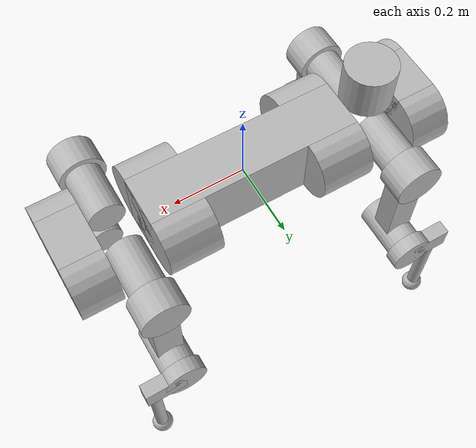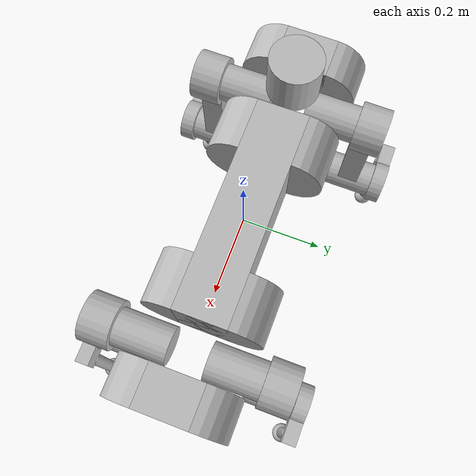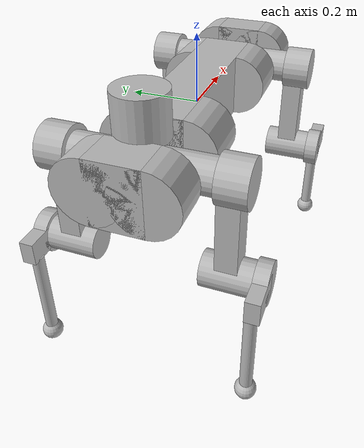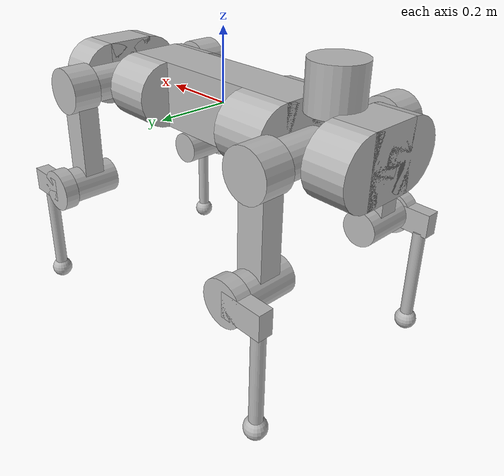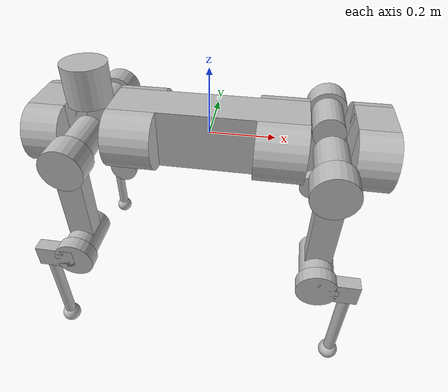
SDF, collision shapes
<sdf version="1.11">
 <model name="anymal">
  <link name="base">
   <inertial>
    <pose>-0.017793943143734711 -0.00017816961328741469 0.0085043390156462131 0 0 0</pose>
    <mass>26.373170000000009</mass>
    <inertia>
     <ixx>0.21671174330797921</ixx>
     <ixy>0.0092238113073508411</ixy>
     <ixz>0.058933188704784728</ixz>
     <iyy>1.785161688617307</iyy>
     <iyz>-0.0001637780172926634</iyz>
     <izz>1.8336994495846779</izz>
    </inertia>
   </inertial>
   <collision name="base_collision">
    <geometry><box><size>0.57999999999999996 0.14000000000000001 0.17999999999999999</size></box></geometry>
   </collision>
   <collision name="base_collision_1">
    <pose>0.2175 0.070000000000000007 0 0 1.5707963267948966 0</pose>
    <geometry>
     <cylinder><length>0.14499999999999999</length><radius>0.089999999999999997</radius></cylinder>
    </geometry>
   </collision>
   <collision name="base_collision_2">
    <pose>-0.2175 0.070000000000000007 0 0 1.5707963267948966 0</pose>
    <geometry>
     <cylinder><length>0.14499999999999999</length><radius>0.089999999999999997</radius></cylinder>
    </geometry>
   </collision>
   <collision name="base_collision_3">
    <pose>0.2175 -0.070000000000000007 0 0 1.5707963267948966 0</pose>
    <geometry>
     <cylinder><length>0.14499999999999999</length><radius>0.089999999999999997</radius></cylinder>
    </geometry>
   </collision>
   <collision name="base_collision_4">
    <pose>-0.2175 -0.070000000000000007 0 0 1.5707963267948966 0</pose>
    <geometry>
     <cylinder><length>0.14499999999999999</length><radius>0.089999999999999997</radius></cylinder>
    </geometry>
   </collision>
   <collision name="base_fixed_joint_lump__face_front_collision_5">
    <pose>0.46949999999999997 0 0 0 0 0</pose>
    <geometry><box><size>0.11 0.14000000000000001 0.17999999999999999</size></box></geometry>
   </collision>
   <collision name="base_fixed_joint_lump__face_front_collision_6">
    <pose>0.46949999999999997 0.070000000000000007 0 0 1.5707963267948966 0</pose>
    <geometry><cylinder><length>0.11</length><radius>0.089999999999999997</radius></cylinder></geometry>
   </collision>
   <collision name="base_fixed_joint_lump__face_front_collision_7">
    <pose>0.46949999999999997 -0.070000000000000007 0 0 1.5707963267948966 0</pose>
    <geometry><cylinder><length>0.11</length><radius>0.089999999999999997</radius></cylinder></geometry>
   </collision>
   <collision name="base_fixed_joint_lump__face_rear_collision_8">
    <pose>-0.46949999999999997 -1.137527089106179e-14 0 0 0 -3.1415926535895871</pose>
    <geometry><box><size>0.11 0.14000000000000001 0.17999999999999999</size></box></geometry>
   </collision>
   <collision name="base_fixed_joint_lump__face_rear_collision_9">
    <pose>-0.46949999999998548 -0.070000000000011386 0 3.1415926535895866
					1.5707963267948966 0</pose>
    <geometry><cylinder><length>0.11</length><radius>0.089999999999999997</radius></cylinder></geometry>
   </collision>
   <collision name="base_fixed_joint_lump__face_rear_collision_10">
    <pose>-0.46950000000001452 0.069999999999988627 0 3.1415926535895866
					1.5707963267948966 0</pose>
    <geometry><cylinder><length>0.11</length><radius>0.089999999999999997</radius></cylinder></geometry>
   </collision>
   <collision name="base_fixed_joint_lump__lidar_cage_collision_11">
    <pose>-0.36399999999999999 0 0.13350000000000001 0 0 0</pose>
    <geometry><cylinder><length>0.12</length><radius>0.070000000000000007</radius></cylinder></geometry>
   </collision>
   <collision name="base_fixed_joint_lump__imu_link_collision_12">
    <pose>0.24879999999999999 0.0083499999999999998 0.051279999999999999 0 0
					1.57079632679</pose>
    <geometry><box><size>0.024 0.024 0.01</size></box></geometry>
   </collision>
   <visual name="base_visual">
    <geometry><mesh><scale>1 1 1</scale><uri>meshes/base.dae</uri></mesh></geometry>
   </visual>
   <visual name="base_fixed_joint_lump__LF_HAA_link_visual_1">
    <pose>0.2999 0.104 0 2.6179938779900001 0 0</pose>
    <geometry><mesh><scale>1 1 1</scale><uri>meshes/drive.dae</uri></mesh></geometry>
   </visual>
   <visual name="base_fixed_joint_lump__LH_HAA_link_visual_2">
    <pose>-0.2999 0.104 0 -2.6179938779900001 -6.3108872417680944e-30 3.1415926535895871</pose>
    <geometry><mesh><scale>1 1 1</scale><uri>meshes/drive.dae</uri></mesh></geometry>
   </visual>
   <visual name="base_fixed_joint_lump__RF_HAA_link_visual_3">
    <pose>0.2999 -0.104 0 -2.6179938779900001 0 0</pose>
    <geometry><mesh><scale>1 1 1</scale><uri>meshes/drive.dae</uri></mesh></geometry>
   </visual>
   <visual name="base_fixed_joint_lump__RH_HAA_link_visual_4">
    <pose>-0.2999 -0.104 0 2.6179938779900001 6.3108872417680944e-30 3.1415926535895871</pose>
    <geometry><mesh><scale>1 1 1</scale><uri>meshes/drive.dae</uri></mesh></geometry>
   </visual>
   <visual name="base_fixed_joint_lump__battery_visual_5">
    <geometry><mesh><scale>1 1 1</scale><uri>meshes/battery.dae</uri></mesh></geometry>
   </visual>
   <visual name="base_fixed_joint_lump__bottom_shell_visual_6">
    <geometry><mesh><scale>1 1 1</scale><uri>meshes/bottom_shell.dae</uri></mesh></geometry>
   </visual>
   <visual name="base_fixed_joint_lump__face_front_visual_7">
    <pose>0.41449999999999998 0 0 0 0 0</pose>
    <geometry><mesh><scale>1 1 1</scale><uri>meshes/face.dae</uri></mesh></geometry>
   </visual>
   <visual name="base_fixed_joint_lump__depth_camera_front_camera_visual_8">
    <pose>0.46165 0 -0.0292 0 0.52359877559800005 0</pose>
    <geometry><mesh><scale>1 1 1</scale><uri>meshes/depth_camera.dae</uri></mesh></geometry>
   </visual>
   <visual name="base_fixed_joint_lump__wide_angle_camera_front_camera_visual_9">
    <pose>0.51300000000000001 0 0.014970000000000001 0 0 0</pose>
    <geometry><mesh><scale>1 1 1</scale><uri>meshes/wide_angle_camera.dae</uri></mesh></geometry>
   </visual>
   <visual name="base_fixed_joint_lump__face_rear_visual_10">
    <pose>-0.41449999999999998 0 0 0 0 -3.1415926535895871</pose>
    <geometry><mesh><scale>1 1 1</scale><uri>meshes/face.dae</uri></mesh></geometry>
   </visual>
   <visual name="base_fixed_joint_lump__depth_camera_rear_camera_visual_11">
    <pose>-0.46165 -9.7517095002466099e-15 -0.0292 -7.287184895719111e-30
					0.52359877559800005
					-3.1415926535895871</pose>
    <geometry><mesh><scale>1 1 1</scale><uri>meshes/depth_camera.dae</uri></mesh></geometry>
   </visual>
   <visual name="base_fixed_joint_lump__wide_angle_camera_rear_camera_visual_12">
    <pose>-0.51300000000000001 -2.037207605035612e-14 0.014970000000000001 0 0
					-3.1415926535895871</pose>
    <geometry><mesh><scale>1 1 1</scale><uri>meshes/wide_angle_camera.dae</uri></mesh></geometry>
   </visual>
   <visual name="base_fixed_joint_lump__handle_visual_13">
    <geometry><mesh><scale>1 1 1</scale><uri>meshes/handle.dae</uri></mesh></geometry>
   </visual>
   <visual name="base_fixed_joint_lump__hatch_visual_14">
    <pose>0.11600000000000001 0 0.072999999999999995 0 0 0</pose>
    <geometry><mesh><scale>1 1 1</scale><uri>meshes/hatch.dae</uri></mesh></geometry>
   </visual>
   <visual name="base_fixed_joint_lump__remote_visual_15">
    <geometry><mesh><scale>1 1 1</scale><uri>meshes/remote.dae</uri></mesh></geometry>
   </visual>
   <visual name="base_fixed_joint_lump__depth_camera_left_camera_visual_16">
    <pose>0 0.07646 0.029049999999999999 -3.2049378106387202e-17 0.52359877559800005
					1.5707963267899998</pose>
    <geometry><mesh><scale>1 1 1</scale><uri>meshes/depth_camera.dae</uri></mesh></geometry>
   </visual>
   <visual name="base_fixed_joint_lump__depth_camera_right_camera_visual_17">
    <pose>0 -0.07646 0.029049999999999999 3.2049378106387202e-17 0.52359877559800005
					-1.5707963267899998</pose>
    <geometry><mesh><scale>1 1 1</scale><uri>meshes/depth_camera.dae</uri></mesh></geometry>
   </visual>
   <visual name="base_fixed_joint_lump__lidar_cage_visual_18">
    <pose>-0.36399999999999999 0 0.073499999999999996 0 0 0</pose>
    <geometry><mesh><scale>1 1 1</scale><uri>meshes/lidar_cage.dae</uri></mesh></geometry>
   </visual>
   <visual name="base_fixed_joint_lump__lidar_visual_19">
    <pose>-0.36399999999999999 0 0.14219999999999999 0 0 -1.57079632679</pose>
    <geometry><mesh><scale>1 1 1</scale><uri>meshes/lidar.dae</uri></mesh></geometry>
   </visual>
   <visual name="base_fixed_joint_lump__top_shell_visual_20">
    <geometry><mesh><scale>1 1 1</scale><uri>meshes/top_shell.dae</uri></mesh></geometry>
   </visual>
   <visual name="base_fixed_joint_lump__imu_link_visual_21">
    <pose>0.24879999999999999 0.0083499999999999998 0.051279999999999999 0 0
					1.57079632679</pose>
    <geometry><box><size>0.024 0.024 0.01</size></box></geometry>
   </visual>
   <sensor name="imu_sensor" type="imu">
    <always_on>1</always_on>
    <update_rate>1</update_rate>
    <visualize>true</visualize>
    <topic>/anymal/imu</topic>
   </sensor>
  </link>
  <joint name="LF_HAA" type="revolute">
   <pose relative_to="base">0.2999 0.104 0 2.6179938779900001 0 0</pose>
   <parent>base</parent>
   <child>LF_HIP</child>
   <axis>
    <xyz>1 0 0</xyz>
    <limit>
     <lower>-0.71999999999999997</lower>
     <upper>0.48999999999999999</upper>
     <effort>80</effort>
     <velocity>7.5</velocity>
    </limit>
    <dynamics>
     <damping>0.01</damping>
     <friction>0.01</friction>
     <spring_reference>0</spring_reference>
     <spring_stiffness>0</spring_stiffness>
    </dynamics>
   </axis>
  </joint>
  <link name="LF_HIP">
   <pose relative_to="LF_HAA">0 0 0 0 0 0</pose>
   <inertial>
    <pose>0.056660625673991612 -0.015293968803304031 -0.0082978431652548611 0 0 0</pose>
    <mass>2.7810000000000001</mass>
    <inertia>
     <ixx>0.003295526429711179</ixx>
     <ixy>-1.0388233058723431e-05</ixy>
     <ixz>0.0001070622327342813</ixz>
     <iyy>0.0050443492876884287</iyy>
     <iyz>-0.00031949181072328699</iyz>
     <izz>0.0057269038510383181</izz>
    </inertia>
   </inertial>
   <collision name="LF_HIP_fixed_joint_lump__LF_HFE_link_collision">
    <pose>0.059899999999657227 -0.011959810826252771 -0.0069050000000178656
					-3.141592653584897
					-1.0471975511902076 -1.570796326794897</pose>
    <geometry>
     <cylinder><length>0.14000000000000001</length><radius>0.050000000000000003</radius></cylinder>
    </geometry>
   </collision>
   <visual name="LF_HIP_fixed_joint_lump__LF_hip_fixed_visual">
    <pose>0 0 0 -2.6179938779900001 0 0</pose>
    <geometry><mesh><scale>1 1 1</scale><uri>meshes/hip_l.dae</uri></mesh></geometry>
   </visual>
   <visual name="LF_HIP_fixed_joint_lump__LF_HFE_link_visual_1">
    <pose>0.059900000000000002 -0.072581589091111176 -0.041905000000108453
					-3.141592653586966
					0.52359877559979318 -1.570796326789242</pose>
    <geometry><mesh><scale>1 1 1</scale><uri>meshes/drive.dae</uri></mesh></geometry>
   </visual>
  </link>
  <joint name="LF_HFE" type="revolute">
   <pose relative_to="LF_HIP">0.059900000000000002 -0.072581589091111176
				-0.041905000000108453
				-3.141592653586966 0.52359877559979318 -1.570796326789242</pose>
   <parent>LF_HIP</parent>
   <child>LF_THIGH</child>
   <axis>
    <xyz>1 0 0</xyz>
    <limit>
     <lower>-9.4247779607699993</lower>
     <upper>9.4247779607699993</upper>
     <effort>80</effort>
     <velocity>7.5</velocity>
    </limit>
    <dynamics>
     <damping>0.01</damping>
     <friction>0.01</friction>
     <spring_reference>0</spring_reference>
     <spring_stiffness>0</spring_stiffness>
    </dynamics>
   </axis>
  </joint>
  <link name="LF_THIGH">
   <pose relative_to="LF_HFE">0 0 0 0 0 0</pose>
   <inertial>
    <pose>0.03081471833279063 4.6499511915559621e-05 -0.24569573428850541 0 0 0</pose>
    <mass>3.0710000000000002</mass>
    <inertia>
     <ixx>0.029563793513988971</ixx>
     <ixy>4.4291901775859802e-05</ixy>
     <ixz>0.0041424259528102039</ixz>
     <iyy>0.029904049332850569</iyy>
     <iyz>9.4479961187896678e-05</iyz>
     <izz>0.004861084530601148</izz>
    </inertia>
   </inertial>
   <collision name="LF_THIGH_fixed_joint_lump__LF_thigh_fixed_collision">
    <pose>0.040000000000000001 1.9587109711949319e-13 0 1.57079632679
					5.5511151231257827e-17
					-1.57079632679</pose>
    <geometry>
     <cylinder><length>0.080000000000000002</length><radius>0.065000000000000002</radius></cylinder>
    </geometry>
   </collision>
   <collision name="LF_THIGH_fixed_joint_lump__LF_thigh_fixed_collision_1">
    <pose>0.029999999999999999 1.46899853392668e-13 -0.14131350000000001 0 0
					-1.57079632679</pose>
    <geometry><box><size>0.074999999999999997 0.059999999999999998 0.28262700000000002</size></box></geometry>
   </collision>
   <collision name="LF_THIGH_fixed_joint_lump__LF_KFE_link_collision_2">
    <pose>0.03029999999999999 4.9113837996550558e-13 -0.28499999999999998 0
					1.5707963267948966 0</pose>
    <geometry>
     <cylinder><length>0.14000000000000001</length><radius>0.050000000000000003</radius></cylinder>
    </geometry>
   </collision>
   <visual name="LF_THIGH_fixed_joint_lump__LF_thigh_fixed_visual">
    <pose>0 0 0 0 0 -1.57079632679</pose>
    <geometry><mesh><scale>1 1 1</scale><uri>meshes/thigh.dae</uri></mesh></geometry>
   </visual>
   <visual name="LF_THIGH_fixed_joint_lump__LF_KFE_link_visual_1">
    <pose>0.1003 4.9113491051855362e-13 -0.28499999999999998 0 0 0</pose>
    <geometry><mesh><scale>1 1 1</scale><uri>meshes/drive.dae</uri></mesh></geometry>
   </visual>
  </link>
  <joint name="LF_KFE" type="revolute">
   <pose relative_to="LF_THIGH">0.1003 4.9113491051855362e-13 -0.28499999999999998 0 0 0</pose>
   <parent>LF_THIGH</parent>
   <child>LF_SHANK</child>
   <axis>
    <xyz>1 0 0</xyz>
    <limit>
     <lower>-9.4247779607699993</lower>
     <upper>9.4247779607699993</upper>
     <effort>80</effort>
     <velocity>7.5</velocity>
    </limit>
    <dynamics>
     <damping>0.01</damping>
     <friction>0.01</friction>
     <spring_reference>0</spring_reference>
     <spring_stiffness>0</spring_stiffness>
    </dynamics>
   </axis>
  </joint>
  <link name="LF_SHANK">
   <pose relative_to="LF_KFE">0 0 0 0 0 0</pose>
   <inertial>
    <pose>0.0054619992525347279 -0.061252769450365827 -0.080659781108731843 0 0 0</pose>
    <mass>0.58842000000000005</mass>
    <inertia>
     <ixx>0.010161141436439239</ixx>
     <ixy>-5.3571329219367323e-05</ixy>
     <ixz>-2.2660426829587631e-05</ixz>
     <iyy>0.0088103798213393578</iyy>
     <iyz>-0.001819353694812817</iyz>
     <izz>0.0015497840809709841</izz>
    </inertia>
   </inertial>
   <collision name="LF_SHANK_fixed_joint_lump__LF_shank_fixed_collision">
    <pose>0.02 9.7935548559746621e-14 0 1.57079632679 5.5511151231257827e-17
					-1.57079632679</pose>
    <geometry>
     <cylinder><length>0.040000000000000001</length><radius>0.059999999999999998</radius></cylinder>
    </geometry>
   </collision>
   <collision name="LF_SHANK_fixed_joint_lump__LF_shank_fixed_collision_1">
    <pose>0.02000000000028155 -0.057498999999902073 0 1.57079632679
					5.5511151231257827e-17
					-1.57079632679</pose>
    <geometry><box><size>0.114998 0.067500000000000004 0.040000000000000001</size></box></geometry>
   </collision>
   <collision name="LF_SHANK_fixed_joint_lump__LF_FOOT_collision_2">
    <pose>0.01305000000043066 -0.087949999999936093 -0.168985 0 0 -1.57079632679</pose>
    <geometry>
     <cylinder><length>0.28250399999999998</length><radius>0.017500000000000002</radius></cylinder>
    </geometry>
   </collision>
   <collision name="LF_SHANK_fixed_joint_lump__LF_FOOT_collision_3">
    <pose>0.01305000000043066 -0.087949999999936093 -0.31546999999999997 0 0
					-1.57079632679</pose>
    <geometry><sphere><radius>0.029999999999999999</radius></sphere></geometry>
   </collision>
   <visual name="LF_SHANK_fixed_joint_lump__LF_shank_fixed_visual">
    <pose>0 0 0 0 0 -1.57079632679</pose>
    <geometry><mesh><scale>1 1 1</scale><uri>meshes/shank_l.dae</uri></mesh></geometry>
   </visual>
   <visual name="LF_SHANK_fixed_joint_lump__LF_FOOT_visual_1">
    <pose>0.01305000000043066 -0.087949999999936093 -0.33796999999999999 0 0
					-2.3561944901869998</pose>
    <geometry><mesh><scale>1 1 1</scale><uri>meshes/foot.dae</uri></mesh></geometry>
   </visual>
   <sensor name="lf_foot_contact" type="contact">
    <always_on>1</always_on>
    <update_rate>200</update_rate>
    <topic>/anymal/LF/contact</topic>
    <contact><collision>LF_SHANK_fixed_joint_lump__LF_FOOT_collision_3</collision></contact>
   </sensor>
  </link>
  <joint name="LH_HAA" type="revolute">
   <pose relative_to="base">-0.2999 0.104 0 -2.6179938779900001 -6.3108872417680944e-30
				3.1415926535895871</pose>
   <parent>base</parent>
   <child>LH_HIP</child>
   <axis>
    <xyz>-1 0 0</xyz>
    <limit>
     <lower>-0.71999999999999997</lower>
     <upper>0.48999999999999999</upper>
     <effort>80</effort>
     <velocity>7.5</velocity>
    </limit>
    <dynamics>
     <damping>0.01</damping>
     <friction>0.01</friction>
     <spring_reference>0</spring_reference>
     <spring_stiffness>0</spring_stiffness>
    </dynamics>
   </axis>
  </joint>
  <link name="LH_HIP">
   <pose relative_to="LH_HAA">0 0 0 0 0 0</pose>
   <inertial>
    <pose>0.056763322546076272 0.015293968803292301 -0.0082978431652548611 0 0 0</pose>
    <mass>2.7810000000000001</mass>
    <inertia>
     <ixx>0.0032955264297111742</ixx>
     <ixy>-1.1005261347922599e-05</ixy>
     <ixz>-0.00010912110284194391</ixz>
     <iyy>0.0050461702880848017</iyy>
     <iyz>0.00031949181072330873</iyz>
     <izz>0.0057287248514346816</izz>
    </inertia>
   </inertial>
   <collision name="LH_HIP_fixed_joint_lump__LH_HFE_link_collision">
    <pose>0.059900000000345253 0.011959810826240379 -0.0069050000000178656
					-3.1415926535848975
					-1.0471975511902067 1.5707963267946903</pose>
    <geometry>
     <cylinder><length>0.14000000000000001</length><radius>0.050000000000000003</radius></cylinder>
    </geometry>
   </collision>
   <visual name="LH_HIP_fixed_joint_lump__LH_hip_fixed_visual">
    <pose>0 0 0 2.6179938779900001 1.0341155355537489e-13 -2.7709042263293297e-14</pose>
    <geometry><mesh><scale>1 1 1</scale><uri>meshes/hip_r.dae</uri></mesh></geometry>
   </visual>
   <visual name="LH_HIP_fixed_joint_lump__LH_HFE_link_visual_1">
    <pose>0.059900000000014997 0.072581589091098797 -0.041905000000108453
					-3.141592653586966
					0.52359877559979318 1.5707963268003442</pose>
    <geometry><mesh><scale>1 1 1</scale><uri>meshes/drive.dae</uri></mesh></geometry>
   </visual>
  </link>
  <joint name="LH_HFE" type="revolute">
   <pose relative_to="LH_HIP">0.059900000000014997 0.072581589091098797
				-0.041905000000108453
				-3.141592653586966 0.52359877559979318 1.5707963268003442</pose>
   <parent>LH_HIP</parent>
   <child>LH_THIGH</child>
   <axis>
    <xyz>1 0 0</xyz>
    <limit>
     <lower>-9.4247779607699993</lower>
     <upper>9.4247779607699993</upper>
     <effort>80</effort>
     <velocity>7.5</velocity>
    </limit>
    <dynamics>
     <damping>0.01</damping>
     <friction>0.01</friction>
     <spring_reference>0</spring_reference>
     <spring_stiffness>0</spring_stiffness>
    </dynamics>
   </axis>
  </joint>
  <link name="LH_THIGH">
   <pose relative_to="LH_HFE">0 0 0 0 0 0</pose>
   <inertial>
    <pose>0.03081471833279063 4.6499511915559621e-05 -0.24569573428850541 0 0 0</pose>
    <mass>3.0710000000000002</mass>
    <inertia>
     <ixx>0.029563793513988971</ixx>
     <ixy>4.43959017758598e-05</ixy>
     <ixz>0.0041424259528101033</ixz>
     <iyy>0.029904049332850569</iyy>
     <iyz>0.0001147939611878967</iyz>
     <izz>0.004861084530601148</izz>
    </inertia>
   </inertial>
   <collision name="LH_THIGH_fixed_joint_lump__LH_thigh_fixed_collision">
    <pose>0.040000000000000001 1.9587109711949319e-13 0 1.57079632679
					5.5511151231257827e-17
					-1.57079632679</pose>
    <geometry>
     <cylinder><length>0.080000000000000002</length><radius>0.065000000000000002</radius></cylinder>
    </geometry>
   </collision>
   <collision name="LH_THIGH_fixed_joint_lump__LH_thigh_fixed_collision_1">
    <pose>0.029999999999999999 1.46899853392668e-13 -0.14131350000000001 0 0
					-1.57079632679</pose>
    <geometry><box><size>0.074999999999999997 0.059999999999999998 0.28262700000000002</size></box></geometry>
   </collision>
   <collision name="LH_THIGH_fixed_joint_lump__LH_KFE_link_collision_2">
    <pose>0.03029999999999999 4.9113837996550558e-13 -0.28499999999999998 0
					1.5707963267948966 0</pose>
    <geometry>
     <cylinder><length>0.14000000000000001</length><radius>0.050000000000000003</radius></cylinder>
    </geometry>
   </collision>
   <visual name="LH_THIGH_fixed_joint_lump__LH_thigh_fixed_visual">
    <pose>0 0 0 0 0 -1.57079632679</pose>
    <geometry><mesh><scale>1 1 1</scale><uri>meshes/thigh.dae</uri></mesh></geometry>
   </visual>
   <visual name="LH_THIGH_fixed_joint_lump__LH_KFE_link_visual_1">
    <pose>0.1003 4.9113491051855362e-13 -0.28499999999999998 0 0 0</pose>
    <geometry><mesh><scale>1 1 1</scale><uri>meshes/drive.dae</uri></mesh></geometry>
   </visual>
  </link>
  <joint name="LH_KFE" type="revolute">
   <pose relative_to="LH_THIGH">0.1003 4.9113491051855362e-13 -0.28499999999999998 0 0 0</pose>
   <parent>LH_THIGH</parent>
   <child>LH_SHANK</child>
   <axis>
    <xyz>1 0 0</xyz>
    <limit>
     <lower>-9.4247779607699993</lower>
     <upper>9.4247779607699993</upper>
     <effort>80</effort>
     <velocity>7.5</velocity>
    </limit>
    <dynamics>
     <damping>0.01</damping>
     <friction>0.01</friction>
     <spring_reference>0</spring_reference>
     <spring_stiffness>0</spring_stiffness>
    </dynamics>
   </axis>
  </joint>
  <link name="LH_SHANK">
   <pose relative_to="LH_KFE">0 0 0 0 0 0</pose>
   <inertial>
    <pose>0.0054619992519348683 0.061252769450419318 -0.080659781108731843 0 0 0</pose>
    <mass>0.58842000000000005</mass>
    <inertia>
     <ixx>0.010161141436438179</ixx>
     <ixy>5.3571329232595592e-05</ixy>
     <ixz>-2.2660426847404861e-05</ixz>
     <iyy>0.008810379821340409</iyy>
     <iyz>0.001819353694812596</iyz>
     <izz>0.0015497840809709841</izz>
    </inertia>
   </inertial>
   <collision name="LH_SHANK_fixed_joint_lump__LH_shank_fixed_collision">
    <pose>0.02 9.7935548559746621e-14 0 1.57079632679 5.5511151231257827e-17
					-1.57079632679</pose>
    <geometry>
     <cylinder><length>0.040000000000000001</length><radius>0.059999999999999998</radius></cylinder>
    </geometry>
   </collision>
   <collision name="LH_SHANK_fixed_joint_lump__LH_shank_fixed_collision_1">
    <pose>0.019999999999718441 0.05749900000009793 0 1.57079632679
					5.5511151231257827e-17
					-1.57079632679</pose>
    <geometry><box><size>0.114998 0.067500000000000004 0.040000000000000001</size></box></geometry>
   </collision>
   <collision name="LH_SHANK_fixed_joint_lump__LH_FOOT_collision_2">
    <pose>0.013049999999569351 0.087950000000063908 -0.168985 0 0 -1.57079632679</pose>
    <geometry>
     <cylinder><length>0.28250399999999998</length><radius>0.017500000000000002</radius></cylinder>
    </geometry>
   </collision>
   <collision name="LH_SHANK_fixed_joint_lump__LH_FOOT_collision_3">
    <pose>0.013049999999569351 0.087950000000063908 -0.31546999999999997 0 0
					-1.57079632679</pose>
    <geometry><sphere><radius>0.029999999999999999</radius></sphere></geometry>
   </collision>
   <visual name="LH_SHANK_fixed_joint_lump__LH_shank_fixed_visual">
    <pose>0 0 0 0 0 1.5707963267995859</pose>
    <geometry><mesh><scale>1 1 1</scale><uri>meshes/shank_r.dae</uri></mesh></geometry>
   </visual>
   <visual name="LH_SHANK_fixed_joint_lump__LH_FOOT_visual_1">
    <pose>0.013049999999569351 0.087950000000063908 -0.33796999999999999 0 0
					2.356194490199587</pose>
    <geometry><mesh><scale>1 1 1</scale><uri>meshes/foot.dae</uri></mesh></geometry>
   </visual>
   <sensor name="lh_foot_contact" type="contact">
    <always_on>1</always_on>
    <update_rate>200</update_rate>
    <topic>/anymal/LH/contact</topic>
    <contact><collision>LH_SHANK_fixed_joint_lump__LH_FOOT_collision_3</collision></contact>
   </sensor>
  </link>
  <joint name="RF_HAA" type="revolute">
   <pose relative_to="base">0.2999 -0.104 0 -2.6179938779900001 0 0</pose>
   <parent>base</parent>
   <child>RF_HIP</child>
   <axis>
    <xyz>1 0 0</xyz>
    <limit>
     <lower>-0.48999999999999999</lower>
     <upper>0.71999999999999997</upper>
     <effort>80</effort>
     <velocity>7.5</velocity>
    </limit>
    <dynamics>
     <damping>0.01</damping>
     <friction>0.01</friction>
     <spring_reference>0</spring_reference>
     <spring_stiffness>0</spring_stiffness>
    </dynamics>
   </axis>
  </joint>
  <link name="RF_HIP">
   <pose relative_to="RF_HAA">0 0 0 0 0 0</pose>
   <inertial>
    <pose>0.056763322545620533 0.01529396880330359 -0.0082978431652546061 0 0 0</pose>
    <mass>2.7810000000000001</mass>
    <inertia>
     <ixx>0.003295526429712052</ixx>
     <ixy>-1.1005261351951489e-05</ixy>
     <ixz>-0.0001091211028422321</ixz>
     <iyy>0.0050461702880768983</iyy>
     <iyz>0.00031949181072414942</iyz>
     <izz>0.0057287248514255439</izz>
    </inertia>
   </inertial>
   <collision name="RF_HIP_fixed_joint_lump__RF_HFE_link_collision">
    <pose>0.059899999999657227 0.011959810826252771 -0.0069050000000178656
					3.141592653584897
					-1.0471975511902076 1.570796326794897</pose>
    <geometry>
     <cylinder><length>0.14000000000000001</length><radius>0.050000000000000003</radius></cylinder>
    </geometry>
   </collision>
   <visual name="RF_HIP_fixed_joint_lump__RF_hip_fixed_visual">
    <pose>0 0 0 2.6179938779900001 0 0</pose>
    <geometry><mesh><scale>1 1 1</scale><uri>meshes/hip_r.dae</uri></mesh></geometry>
   </visual>
   <visual name="RF_HIP_fixed_joint_lump__RF_HFE_link_visual_1">
    <pose>0.059900000000000002 0.072581589091111176 -0.041905000000108453
					3.141592653586966
					0.52359877559979318 1.570796326789242</pose>
    <geometry><mesh><scale>1 1 1</scale><uri>meshes/drive.dae</uri></mesh></geometry>
   </visual>
  </link>
  <joint name="RF_HFE" type="revolute">
   <pose relative_to="RF_HIP">0.059900000000000002 0.072581589091111176
				-0.041905000000108453
				3.141592653586966 0.52359877559979318 1.570796326789242</pose>
   <parent>RF_HIP</parent>
   <child>RF_THIGH</child>
   <axis>
    <xyz>-1 0 0</xyz>
    <limit>
     <lower>-9.4247779607699993</lower>
     <upper>9.4247779607699993</upper>
     <effort>80</effort>
     <velocity>7.5</velocity>
    </limit>
    <dynamics>
     <damping>0.01</damping>
     <friction>0.01</friction>
     <spring_reference>0</spring_reference>
     <spring_stiffness>0</spring_stiffness>
    </dynamics>
   </axis>
  </joint>
  <link name="RF_THIGH">
   <pose relative_to="RF_HFE">0 0 0 0 0 0</pose>
   <inertial>
    <pose>0.030814718332790619 4.6499511203945423e-05 -0.24569573428850541 0 0 0</pose>
    <mass>3.0710000000000002</mass>
    <inertia>
     <ixx>0.029563793513988881</ixx>
     <ixy>4.4395901779985203e-05</ixy>
     <ixz>0.0041424259528102074</ixz>
     <iyy>0.029904049332850541</iyy>
     <iyz>0.0001147939610993062</iyz>
     <izz>0.0048610845306010673</izz>
    </inertia>
   </inertial>
   <collision name="RF_THIGH_fixed_joint_lump__RF_thigh_fixed_collision">
    <pose>0.040000000000000001 -1.9587109711949319e-13 0 1.57079632679
					-5.5511151231257827e-17
					1.57079632679</pose>
    <geometry>
     <cylinder><length>0.080000000000000002</length><radius>0.065000000000000002</radius></cylinder>
    </geometry>
   </collision>
   <collision name="RF_THIGH_fixed_joint_lump__RF_thigh_fixed_collision_1">
    <pose>0.029999999999999999 -1.46899853392668e-13 -0.14131350000000001 0 0
					1.57079632679</pose>
    <geometry><box><size>0.074999999999999997 0.059999999999999998 0.28262700000000002</size></box></geometry>
   </collision>
   <collision name="RF_THIGH_fixed_joint_lump__RF_KFE_link_collision_2">
    <pose>0.03029999999999999 -4.9113837996550558e-13 -0.28499999999999998 0
					1.5707963267948966
					0</pose>
    <geometry>
     <cylinder><length>0.14000000000000001</length><radius>0.050000000000000003</radius></cylinder>
    </geometry>
   </collision>
   <visual name="RF_THIGH_fixed_joint_lump__RF_thigh_fixed_visual">
    <pose>0 0 0 0 0 -1.5707963268</pose>
    <geometry><mesh><scale>1 1 1</scale><uri>meshes/thigh.dae</uri></mesh></geometry>
   </visual>
   <visual name="RF_THIGH_fixed_joint_lump__RF_KFE_link_visual_1">
    <pose>0.1003 -4.9113491051855362e-13 -0.28499999999999998 0 0 0</pose>
    <geometry><mesh><scale>1 1 1</scale><uri>meshes/drive.dae</uri></mesh></geometry>
   </visual>
  </link>
  <joint name="RF_KFE" type="revolute">
   <pose relative_to="RF_THIGH">0.1003 -4.9113491051855362e-13 -0.28499999999999998 0 0 0</pose>
   <parent>RF_THIGH</parent>
   <child>RF_SHANK</child>
   <axis>
    <xyz>-1 0 0</xyz>
    <limit>
     <lower>-9.4247779607699993</lower>
     <upper>9.4247779607699993</upper>
     <effort>80</effort>
     <velocity>7.5</velocity>
    </limit>
    <dynamics>
     <damping>0.01</damping>
     <friction>0.01</friction>
     <spring_reference>0</spring_reference>
     <spring_stiffness>0</spring_stiffness>
    </dynamics>
   </axis>
  </joint>
  <link name="RF_SHANK">
   <pose relative_to="RF_KFE">0 0 0 0 0 0</pose>
   <inertial>
    <pose>0.0054619992525347279 0.061252769450365827 -0.080659781108731843 0 0 0</pose>
    <mass>0.58842000000000005</mass>
    <inertia>
     <ixx>0.010161141436439239</ixx>
     <ixy>5.3571329219367323e-05</ixy>
     <ixz>-2.2660426829587631e-05</ixz>
     <iyy>0.0088103798213393578</iyy>
     <iyz>0.001819353694812817</iyz>
     <izz>0.0015497840809709841</izz>
    </inertia>
   </inertial>
   <collision name="RF_SHANK_fixed_joint_lump__RF_shank_fixed_collision">
    <pose>0.02 -9.7935548559746621e-14 0 1.57079632679 -5.5511151231257827e-17
					1.57079632679</pose>
    <geometry>
     <cylinder><length>0.040000000000000001</length><radius>0.059999999999999998</radius></cylinder>
    </geometry>
   </collision>
   <collision name="RF_SHANK_fixed_joint_lump__RF_shank_fixed_collision_1">
    <pose>0.02000000000028155 0.057498999999902073 0 1.57079632679
					-5.5511151231257827e-17
					1.57079632679</pose>
    <geometry><box><size>0.114998 0.067500000000000004 0.040000000000000001</size></box></geometry>
   </collision>
   <collision name="RF_SHANK_fixed_joint_lump__RF_FOOT_collision_2">
    <pose>0.01305000000043066 0.087949999999936093 -0.168985 0 0 1.57079632679</pose>
    <geometry>
     <cylinder><length>0.28250399999999998</length><radius>0.017500000000000002</radius></cylinder>
    </geometry>
   </collision>
   <collision name="RF_SHANK_fixed_joint_lump__RF_FOOT_collision_3">
    <pose>0.01305000000043066 0.087949999999936093 -0.31546999999999997 0 0
					1.57079632679</pose>
    <geometry><sphere><radius>0.029999999999999999</radius></sphere></geometry>
   </collision>
   <visual name="RF_SHANK_fixed_joint_lump__RF_shank_fixed_visual">
    <pose>0 0 0 0 0 1.57079632679</pose>
    <geometry><mesh><scale>1 1 1</scale><uri>meshes/shank_r.dae</uri></mesh></geometry>
   </visual>
   <visual name="RF_SHANK_fixed_joint_lump__RF_FOOT_visual_1">
    <pose>0.01305000000043066 0.087949999999936093 -0.33796999999999999 0 0
					2.3561944901869998</pose>
    <geometry><mesh><scale>1 1 1</scale><uri>meshes/foot.dae</uri></mesh></geometry>
   </visual>
   <sensor name="rf_foot_contact" type="contact">
    <always_on>1</always_on>
    <update_rate>200</update_rate>
    <topic>/anymal/RF/contact</topic>
    <contact><collision>RF_SHANK_fixed_joint_lump__RF_FOOT_collision_3</collision></contact>
   </sensor>
  </link>
  <joint name="RH_HAA" type="revolute">
   <pose relative_to="base">-0.2999 -0.104 0 2.6179938779900001 6.3108872417680944e-30
				3.1415926535895871</pose>
   <parent>base</parent>
   <child>RH_HIP</child>
   <axis>
    <xyz>-1 0 0</xyz>
    <limit>
     <lower>-0.48999999999999999</lower>
     <upper>0.71999999999999997</upper>
     <effort>80</effort>
     <velocity>7.5</velocity>
    </limit>
    <dynamics>
     <damping>0.01</damping>
     <friction>0.01</friction>
     <spring_reference>0</spring_reference>
     <spring_stiffness>0</spring_stiffness>
    </dynamics>
   </axis>
  </joint>
  <link name="RH_HIP">
   <pose relative_to="RH_HAA">0 0 0 0 0 0</pose>
   <inertial>
    <pose>0.056660625674441023 -0.015293968803315299 -0.0082978431652546061 0 0 0</pose>
    <mass>2.7810000000000001</mass>
    <inertia>
     <ixx>0.0032955264297120481</ixx>
     <ixy>-1.038823306203805e-05</ixy>
     <ixz>0.0001070622327344326</ixz>
     <iyy>0.0050443492876965819</iyy>
     <iyz>-0.00031949181072417148</iyz>
     <izz>0.0057269038510452223</izz>
    </inertia>
   </inertial>
   <collision name="RH_HIP_fixed_joint_lump__RH_HFE_link_collision">
    <pose>0.059900000000340292 -0.01195981082626516 -0.0069050000000178656
					3.141592653584897
					-1.0471975511902074 -1.5707963267951028</pose>
    <geometry>
     <cylinder><length>0.14000000000000001</length><radius>0.050000000000000003</radius></cylinder>
    </geometry>
   </collision>
   <visual name="RH_HIP_fixed_joint_lump__RH_hip_fixed_visual">
    <pose>0 0 0 -2.6179938779900001 -1.0341155355537489e-13 -2.7709042263293297e-14</pose>
    <geometry><mesh><scale>1 1 1</scale><uri>meshes/hip_l.dae</uri></mesh></geometry>
   </visual>
   <visual name="RH_HIP_fixed_joint_lump__RH_HFE_link_visual_1">
    <pose>0.059899999999984979 -0.072581589091123569 -0.041905000000108453
					3.141592653586966
					0.52359877559979318 -1.5707963268007583</pose>
    <geometry><mesh><scale>1 1 1</scale><uri>meshes/drive.dae</uri></mesh></geometry>
   </visual>
  </link>
  <joint name="RH_HFE" type="revolute">
   <pose relative_to="RH_HIP">0.059899999999984979 -0.072581589091123569
				-0.041905000000108453
				3.141592653586966 0.52359877559979318 -1.5707963268007583</pose>
   <parent>RH_HIP</parent>
   <child>RH_THIGH</child>
   <axis>
    <xyz>-1 0 0</xyz>
    <limit>
     <lower>-9.4247779607699993</lower>
     <upper>9.4247779607699993</upper>
     <effort>80</effort>
     <velocity>7.5</velocity>
    </limit>
    <dynamics>
     <damping>0.01</damping>
     <friction>0.01</friction>
     <spring_reference>0</spring_reference>
     <spring_stiffness>0</spring_stiffness>
    </dynamics>
   </axis>
  </joint>
  <link name="RH_THIGH">
   <pose relative_to="RH_HFE">0 0 0 0 0 0</pose>
   <inertial>
    <pose>0.030814718332790619 4.6499511203945423e-05 -0.24569573428850541 0 0 0</pose>
    <mass>3.0710000000000002</mass>
    <inertia>
     <ixx>0.029563793513988881</ixx>
     <ixy>4.4291901779985212e-05</ixy>
     <ixz>0.0041424259528101068</ixz>
     <iyy>0.029904049332850541</iyy>
     <iyz>9.4479961099306194e-05</iyz>
     <izz>0.0048610845306010673</izz>
    </inertia>
   </inertial>
   <collision name="RH_THIGH_fixed_joint_lump__RH_thigh_fixed_collision">
    <pose>0.040000000000000001 -1.9587109711949319e-13 0 1.57079632679
					-5.5511151231257827e-17
					1.57079632679</pose>
    <geometry>
     <cylinder><length>0.080000000000000002</length><radius>0.065000000000000002</radius></cylinder>
    </geometry>
   </collision>
   <collision name="RH_THIGH_fixed_joint_lump__RH_thigh_fixed_collision_1">
    <pose>0.029999999999999999 -1.46899853392668e-13 -0.14131350000000001 0 0
					1.57079632679</pose>
    <geometry><box><size>0.074999999999999997 0.059999999999999998 0.28262700000000002</size></box></geometry>
   </collision>
   <collision name="RH_THIGH_fixed_joint_lump__RH_KFE_link_collision_2">
    <pose>0.03029999999999999 -4.9113837996550558e-13 -0.28499999999999998 0
					1.5707963267948966
					0</pose>
    <geometry>
     <cylinder><length>0.14000000000000001</length><radius>0.050000000000000003</radius></cylinder>
    </geometry>
   </collision>
   <visual name="RH_THIGH_fixed_joint_lump__RH_thigh_fixed_visual">
    <pose>0 0 0 0 0 -1.5707963268</pose>
    <geometry><mesh><scale>1 1 1</scale><uri>meshes/thigh.dae</uri></mesh></geometry>
   </visual>
   <visual name="RH_THIGH_fixed_joint_lump__RH_KFE_link_visual_1">
    <pose>0.1003 -4.9113491051855362e-13 -0.28499999999999998 0 0 0</pose>
    <geometry><mesh><scale>1 1 1</scale><uri>meshes/drive.dae</uri></mesh></geometry>
   </visual>
  </link>
  <joint name="RH_KFE" type="revolute">
   <pose relative_to="RH_THIGH">0.1003 -4.9113491051855362e-13 -0.28499999999999998 0 0 0</pose>
   <parent>RH_THIGH</parent>
   <child>RH_SHANK</child>
   <axis>
    <xyz>-1 0 0</xyz>
    <limit>
     <lower>-9.4247779607699993</lower>
     <upper>9.4247779607699993</upper>
     <effort>80</effort>
     <velocity>7.5</velocity>
    </limit>
    <dynamics>
     <damping>0.01</damping>
     <friction>0.01</friction>
     <spring_reference>0</spring_reference>
     <spring_stiffness>0</spring_stiffness>
    </dynamics>
   </axis>
  </joint>
  <link name="RH_SHANK">
   <pose relative_to="RH_KFE">0 0 0 0 0 0</pose>
   <inertial>
    <pose>0.0054619992519348683 -0.061252769450419318 -0.080659781108731843 0 0 0</pose>
    <mass>0.58842000000000005</mass>
    <inertia>
     <ixx>0.010161141436438179</ixx>
     <ixy>-5.3571329232595592e-05</ixy>
     <ixz>-2.2660426847404861e-05</ixz>
     <iyy>0.008810379821340409</iyy>
     <iyz>-0.001819353694812596</iyz>
     <izz>0.0015497840809709841</izz>
    </inertia>
   </inertial>
   <collision name="RH_SHANK_fixed_joint_lump__RH_shank_fixed_collision">
    <pose>0.02 -9.7935548559746621e-14 0 1.57079632679 -5.5511151231257827e-17
					1.57079632679</pose>
    <geometry>
     <cylinder><length>0.040000000000000001</length><radius>0.059999999999999998</radius></cylinder>
    </geometry>
   </collision>
   <collision name="RH_SHANK_fixed_joint_lump__RH_shank_fixed_collision_1">
    <pose>0.019999999999718441 -0.05749900000009793 0 1.57079632679
					-5.5511151231257827e-17
					1.57079632679</pose>
    <geometry><box><size>0.114998 0.067500000000000004 0.040000000000000001</size></box></geometry>
   </collision>
   <collision name="RH_SHANK_fixed_joint_lump__RH_FOOT_collision_2">
    <pose>0.013049999999569351 -0.087950000000063908 -0.168985 0 0 1.57079632679</pose>
    <geometry>
     <cylinder><length>0.28250399999999998</length><radius>0.017500000000000002</radius></cylinder>
    </geometry>
   </collision>
   <collision name="RH_SHANK_fixed_joint_lump__RH_FOOT_collision_3">
    <pose>0.013049999999569351 -0.087950000000063908 -0.31546999999999997 0 0
					1.57079632679</pose>
    <geometry><sphere><radius>0.029999999999999999</radius></sphere></geometry>
   </collision>
   <visual name="RH_SHANK_fixed_joint_lump__RH_shank_fixed_visual">
    <pose>0 0 0 0 0 -1.5707963268</pose>
    <geometry><mesh><scale>1 1 1</scale><uri>meshes/shank_l.dae</uri></mesh></geometry>
   </visual>
   <visual name="RH_SHANK_fixed_joint_lump__RH_FOOT_visual_1">
    <pose>0.013049999999569351 -0.087950000000063908 -0.33796999999999999 0 0
					-2.3561944902</pose>
    <geometry><mesh><scale>1 1 1</scale><uri>meshes/foot.dae</uri></mesh></geometry>
   </visual>
   <sensor name="rh_foot_contact" type="contact">
    <always_on>1</always_on>
    <update_rate>200</update_rate>
    <topic>/anymal/RH/contact</topic>
    <contact><collision>RH_SHANK_fixed_joint_lump__RH_FOOT_collision_3</collision></contact>
   </sensor>
  </link>
  <frame name="base_LF_HAA" attached_to="base"><pose>0.2999 0.104 0 2.6179938779900001 0 0</pose></frame>
  <frame name="LF_HAA_link" attached_to="base_LF_HAA"/>
  <frame name="LF_hip_fixed_LF_HFE" attached_to="LF_hip_fixed">
   <pose>0.059900000000000002 0.083809999999999996 0 0 0 1.57079632679</pose>
  </frame>
  <frame name="LF_HFE_link" attached_to="LF_hip_fixed_LF_HFE"/>
  <frame name="LF_thigh_fixed_LF_KFE" attached_to="LF_thigh_fixed">
   <pose>0 0.1003 -0.28499999999999998 0 0 1.57079632679</pose>
  </frame>
  <frame name="LF_KFE_link" attached_to="LF_thigh_fixed_LF_KFE"/>
  <frame name="LF_shank_fixed_LF_FOOT" attached_to="LF_shank_fixed">
   <pose>0.08795 0.013050000000000001 -0.33796999999999999 0 0 0</pose>
  </frame>
  <frame name="LF_FOOT" attached_to="LF_shank_fixed_LF_FOOT"/>
  <frame name="LF_shank_LF_shank_fixed" attached_to="LF_SHANK"><pose>0 0 0 0 0 -1.57079632679</pose></frame>
  <frame name="LF_shank_fixed" attached_to="LF_shank_LF_shank_fixed"/>
  <frame name="LF_THIGH_LF_thigh_fixed" attached_to="LF_THIGH"><pose>0 0 0 0 0 -1.57079632679</pose></frame>
  <frame name="LF_thigh_fixed" attached_to="LF_THIGH_LF_thigh_fixed"/>
  <frame name="LF_HIP_LF_hip_fixed" attached_to="LF_HIP"><pose>0 0 0 -2.6179938779900001 0 0</pose></frame>
  <frame name="LF_hip_fixed" attached_to="LF_HIP_LF_hip_fixed"/>
  <frame name="base_LH_HAA" attached_to="base">
   <pose>-0.2999 0.104 0 -2.6179938779900001 -6.3108872417680944e-30 3.1415926535895871</pose>
  </frame>
  <frame name="LH_HAA_link" attached_to="base_LH_HAA"/>
  <frame name="LH_hip_fixed_LH_HFE" attached_to="LH_hip_fixed">
   <pose>-0.059900000000000002 0.083809999999999996 0 0 0 1.57079632679</pose>
  </frame>
  <frame name="LH_HFE_link" attached_to="LH_hip_fixed_LH_HFE"/>
  <frame name="LH_thigh_fixed_LH_KFE" attached_to="LH_thigh_fixed">
   <pose>0 0.1003 -0.28499999999999998 0 0 1.57079632679</pose>
  </frame>
  <frame name="LH_KFE_link" attached_to="LH_thigh_fixed_LH_KFE"/>
  <frame name="LH_shank_fixed_LH_FOOT" attached_to="LH_shank_fixed">
   <pose>-0.08795 0.013050000000000001 -0.33796999999999999 0 0 0</pose>
  </frame>
  <frame name="LH_FOOT" attached_to="LH_shank_fixed_LH_FOOT"/>
  <frame name="LH_shank_LH_shank_fixed" attached_to="LH_SHANK"><pose>0 0 0 0 0 -1.57079632679</pose></frame>
  <frame name="LH_shank_fixed" attached_to="LH_shank_LH_shank_fixed"/>
  <frame name="LH_THIGH_LH_thigh_fixed" attached_to="LH_THIGH"><pose>0 0 0 0 0 -1.57079632679</pose></frame>
  <frame name="LH_thigh_fixed" attached_to="LH_THIGH_LH_thigh_fixed"/>
  <frame name="LH_HIP_LH_hip_fixed" attached_to="LH_HIP">
   <pose>0 0 0 -2.6179938779900001 -6.3108872417680944e-30 3.1415926535895871</pose>
  </frame>
  <frame name="LH_hip_fixed" attached_to="LH_HIP_LH_hip_fixed"/>
  <frame name="base_RF_HAA" attached_to="base"><pose>0.2999 -0.104 0 -2.6179938779900001 0 0</pose></frame>
  <frame name="RF_HAA_link" attached_to="base_RF_HAA"/>
  <frame name="RF_hip_fixed_RF_HFE" attached_to="RF_hip_fixed">
   <pose>0.059900000000000002 -0.083809999999999996 0 0 0 -1.57079632679</pose>
  </frame>
  <frame name="RF_HFE_link" attached_to="RF_hip_fixed_RF_HFE"/>
  <frame name="RF_thigh_fixed_RF_KFE" attached_to="RF_thigh_fixed">
   <pose>0 -0.1003 -0.28499999999999998 0 0 -1.57079632679</pose>
  </frame>
  <frame name="RF_KFE_link" attached_to="RF_thigh_fixed_RF_KFE"/>
  <frame name="RF_shank_fixed_RF_FOOT" attached_to="RF_shank_fixed">
   <pose>0.08795 -0.013050000000000001 -0.33796999999999999 0 0 0</pose>
  </frame>
  <frame name="RF_FOOT" attached_to="RF_shank_fixed_RF_FOOT"/>
  <frame name="RF_shank_RF_shank_fixed" attached_to="RF_SHANK"><pose>0 0 0 0 0 1.57079632679</pose></frame>
  <frame name="RF_shank_fixed" attached_to="RF_shank_RF_shank_fixed"/>
  <frame name="RF_THIGH_RF_thigh_fixed" attached_to="RF_THIGH"><pose>0 0 0 0 0 1.57079632679</pose></frame>
  <frame name="RF_thigh_fixed" attached_to="RF_THIGH_RF_thigh_fixed"/>
  <frame name="RF_HIP_RF_hip_fixed" attached_to="RF_HIP"><pose>0 0 0 2.6179938779900001 0 0</pose></frame>
  <frame name="RF_hip_fixed" attached_to="RF_HIP_RF_hip_fixed"/>
  <frame name="base_RH_HAA" attached_to="base">
   <pose>-0.2999 -0.104 0 2.6179938779900001 6.3108872417680944e-30 3.1415926535895871</pose>
  </frame>
  <frame name="RH_HAA_link" attached_to="base_RH_HAA"/>
  <frame name="RH_hip_fixed_RH_HFE" attached_to="RH_hip_fixed">
   <pose>-0.059900000000000002 -0.083809999999999996 0 0 0 -1.57079632679</pose>
  </frame>
  <frame name="RH_HFE_link" attached_to="RH_hip_fixed_RH_HFE"/>
  <frame name="RH_thigh_fixed_RH_KFE" attached_to="RH_thigh_fixed">
   <pose>0 -0.1003 -0.28499999999999998 0 0 -1.57079632679</pose>
  </frame>
  <frame name="RH_KFE_link" attached_to="RH_thigh_fixed_RH_KFE"/>
  <frame name="RH_shank_fixed_RH_FOOT" attached_to="RH_shank_fixed">
   <pose>-0.08795 -0.013050000000000001 -0.33796999999999999 0 0 0</pose>
  </frame>
  <frame name="RH_FOOT" attached_to="RH_shank_fixed_RH_FOOT"/>
  <frame name="RH_shank_RH_shank_fixed" attached_to="RH_SHANK"><pose>0 0 0 0 0 1.57079632679</pose></frame>
  <frame name="RH_shank_fixed" attached_to="RH_shank_RH_shank_fixed"/>
  <frame name="RH_THIGH_RH_thigh_fixed" attached_to="RH_THIGH"><pose>0 0 0 0 0 1.57079632679</pose></frame>
  <frame name="RH_thigh_fixed" attached_to="RH_THIGH_RH_thigh_fixed"/>
  <frame name="RH_HIP_RH_hip_fixed" attached_to="RH_HIP">
   <pose>0 0 0 2.6179938779900001 6.3108872417680944e-30 3.1415926535895871</pose>
  </frame>
  <frame name="RH_hip_fixed" attached_to="RH_HIP_RH_hip_fixed"/>
  <frame name="base_battery" attached_to="base"/>
  <frame name="battery" attached_to="base_battery"/>
  <frame name="base_bottom_shell" attached_to="base"/>
  <frame name="bottom_shell" attached_to="base_bottom_shell"/>
  <frame name="depth_camera_front_color_frame_to_color_optical_frame" attached_to="depth_camera_front_color_frame">
   <pose>0 0 0 -1.57079632679 -5.5511151231257827e-17 -1.57079632679</pose>
  </frame>
  <frame name="depth_camera_front_color_optical_frame" attached_to="depth_camera_front_color_frame_to_color_optical_frame"/>
  <frame name="depth_camera_front_camera_parent_to_color_frame" attached_to="depth_camera_front_camera_parent">
   <pose>0 0.014999999999999999 0 0 0 0</pose>
  </frame>
  <frame name="depth_camera_front_color_frame" attached_to="depth_camera_front_camera_parent_to_color_frame"/>
  <frame name="depth_camera_front_camera_parent_to_depth_optical_frame" attached_to="depth_camera_front_camera_parent">
   <pose>0 0 0 -1.57079632679 -5.5511151231257827e-17 -1.57079632679</pose>
  </frame>
  <frame name="depth_camera_front_depth_optical_frame" attached_to="depth_camera_front_camera_parent_to_depth_optical_frame"/>
  <frame name="depth_camera_front_camera_to_camera_parent" attached_to="depth_camera_front_camera">
   <pose>0.025499999999999998 0.017500000000000002 0 0 0 0</pose>
  </frame>
  <frame name="depth_camera_front_camera_parent" attached_to="depth_camera_front_camera_to_camera_parent"/>
  <frame name="face_front_to_depth_camera_front_camera" attached_to="face_front">
   <pose>0.047149999999999997 0 -0.0292 0 0.52359877559800005 0</pose>
  </frame>
  <frame name="depth_camera_front_camera" attached_to="face_front_to_depth_camera_front_camera"/>
  <frame name="wide_angle_camera_front_camera_to_camera_parent" attached_to="wide_angle_camera_front_camera">
   <pose>0 0 0 -1.57079632679 -5.5511151231257827e-17 -1.57079632679</pose>
  </frame>
  <frame name="wide_angle_camera_front_camera_parent" attached_to="wide_angle_camera_front_camera_to_camera_parent"/>
  <frame name="face_front_to_wide_angle_camera_front_camera" attached_to="face_front">
   <pose>0.098500000000000004 0 0.014970000000000001 0 0 0</pose>
  </frame>
  <frame name="wide_angle_camera_front_camera" attached_to="face_front_to_wide_angle_camera_front_camera"/>
  <frame name="base_face_front" attached_to="base"><pose>0.41449999999999998 0 0 0 0 0</pose></frame>
  <frame name="face_front" attached_to="base_face_front"/>
  <frame name="depth_camera_rear_color_frame_to_color_optical_frame" attached_to="depth_camera_rear_color_frame">
   <pose>0 0 0 -1.57079632679 -5.5511151231257827e-17 -1.57079632679</pose>
  </frame>
  <frame name="depth_camera_rear_color_optical_frame" attached_to="depth_camera_rear_color_frame_to_color_optical_frame"/>
  <frame name="depth_camera_rear_camera_parent_to_color_frame" attached_to="depth_camera_rear_camera_parent">
   <pose>0 0.014999999999999999 0 0 0 0</pose>
  </frame>
  <frame name="depth_camera_rear_color_frame" attached_to="depth_camera_rear_camera_parent_to_color_frame"/>
  <frame name="depth_camera_rear_camera_parent_to_depth_optical_frame" attached_to="depth_camera_rear_camera_parent">
   <pose>0 0 0 -1.57079632679 -5.5511151231257827e-17 -1.57079632679</pose>
  </frame>
  <frame name="depth_camera_rear_depth_optical_frame" attached_to="depth_camera_rear_camera_parent_to_depth_optical_frame"/>
  <frame name="depth_camera_rear_camera_to_camera_parent" attached_to="depth_camera_rear_camera">
   <pose>0.025499999999999998 0.017500000000000002 0 0 0 0</pose>
  </frame>
  <frame name="depth_camera_rear_camera_parent" attached_to="depth_camera_rear_camera_to_camera_parent"/>
  <frame name="face_rear_to_depth_camera_rear_camera" attached_to="face_rear">
   <pose>0.047149999999999997 0 -0.0292 0 0.52359877559800005 0</pose>
  </frame>
  <frame name="depth_camera_rear_camera" attached_to="face_rear_to_depth_camera_rear_camera"/>
  <frame name="wide_angle_camera_rear_camera_to_camera_parent" attached_to="wide_angle_camera_rear_camera">
   <pose>0 0 0 -1.57079632679 -5.5511151231257827e-17 -1.57079632679</pose>
  </frame>
  <frame name="wide_angle_camera_rear_camera_parent" attached_to="wide_angle_camera_rear_camera_to_camera_parent"/>
  <frame name="face_rear_to_wide_angle_camera_rear_camera" attached_to="face_rear">
   <pose>0.098500000000000004 0 0.014970000000000001 0 0 0</pose>
  </frame>
  <frame name="wide_angle_camera_rear_camera" attached_to="face_rear_to_wide_angle_camera_rear_camera"/>
  <frame name="base_face_rear" attached_to="base">
   <pose>-0.41449999999999998 0 0 0 0 -3.1415926535895871</pose>
  </frame>
  <frame name="face_rear" attached_to="base_face_rear"/>
  <frame name="base_handle" attached_to="base"/>
  <frame name="handle" attached_to="base_handle"/>
  <frame name="base_hatch" attached_to="base"/>
  <frame name="hatch" attached_to="base_hatch"/>
  <frame name="base_remote" attached_to="base"/>
  <frame name="remote" attached_to="base_remote"/>
  <frame name="base_to_base_inertia" attached_to="base"/>
  <frame name="base_inertia" attached_to="base_to_base_inertia"/>
  <frame name="depth_camera_left_color_frame_to_color_optical_frame" attached_to="depth_camera_left_color_frame">
   <pose>0 0 0 -1.57079632679 -5.5511151231257827e-17 -1.57079632679</pose>
  </frame>
  <frame name="depth_camera_left_color_optical_frame" attached_to="depth_camera_left_color_frame_to_color_optical_frame"/>
  <frame name="depth_camera_left_camera_parent_to_color_frame" attached_to="depth_camera_left_camera_parent">
   <pose>0 0.014999999999999999 0 0 0 0</pose>
  </frame>
  <frame name="depth_camera_left_color_frame" attached_to="depth_camera_left_camera_parent_to_color_frame"/>
  <frame name="depth_camera_left_camera_parent_to_depth_optical_frame" attached_to="depth_camera_left_camera_parent">
   <pose>0 0 0 -1.57079632679 -5.5511151231257827e-17 -1.57079632679</pose>
  </frame>
  <frame name="depth_camera_left_depth_optical_frame" attached_to="depth_camera_left_camera_parent_to_depth_optical_frame"/>
  <frame name="depth_camera_left_camera_to_camera_parent" attached_to="depth_camera_left_camera">
   <pose>0.025499999999999998 0.017500000000000002 0 0 0 0</pose>
  </frame>
  <frame name="depth_camera_left_camera_parent" attached_to="depth_camera_left_camera_to_camera_parent"/>
  <frame name="base_to_depth_camera_left_camera" attached_to="base">
   <pose>0 0.07646 0.029049999999999999 -1.2819751242554881e-16 0.52359877559800028
				1.5707963267899998</pose>
  </frame>
  <frame name="depth_camera_left_camera" attached_to="base_to_depth_camera_left_camera"/>
  <frame name="depth_camera_right_color_frame_to_color_optical_frame" attached_to="depth_camera_right_color_frame">
   <pose>0 0 0 -1.57079632679 -5.5511151231257827e-17 -1.57079632679</pose>
  </frame>
  <frame name="depth_camera_right_color_optical_frame" attached_to="depth_camera_right_color_frame_to_color_optical_frame"/>
  <frame name="depth_camera_right_camera_parent_to_color_frame" attached_to="depth_camera_right_camera_parent">
   <pose>0 0.014999999999999999 0 0 0 0</pose>
  </frame>
  <frame name="depth_camera_right_color_frame" attached_to="depth_camera_right_camera_parent_to_color_frame"/>
  <frame name="depth_camera_right_camera_parent_to_depth_optical_frame" attached_to="depth_camera_right_camera_parent">
   <pose>0 0 0 -1.57079632679 -5.5511151231257827e-17 -1.57079632679</pose>
  </frame>
  <frame name="depth_camera_right_depth_optical_frame" attached_to="depth_camera_right_camera_parent_to_depth_optical_frame"/>
  <frame name="depth_camera_right_camera_to_camera_parent" attached_to="depth_camera_right_camera">
   <pose>0.025499999999999998 0.017500000000000002 0 0 0 0</pose>
  </frame>
  <frame name="depth_camera_right_camera_parent" attached_to="depth_camera_right_camera_to_camera_parent"/>
  <frame name="base_to_depth_camera_right_camera" attached_to="base">
   <pose>0 -0.07646 0.029049999999999999 1.2819751242554881e-16 0.52359877559800028
				-1.5707963267899998</pose>
  </frame>
  <frame name="depth_camera_right_camera" attached_to="base_to_depth_camera_right_camera"/>
  <frame name="base_to_docking_hatch_cover" attached_to="base">
   <pose>0.34300000000000003 0 -0.070000000000000007 0 0 0</pose>
  </frame>
  <frame name="docking_hatch_cover" attached_to="base_to_docking_hatch_cover"/>
  <frame name="lidar_cage_to_lidar" attached_to="lidar_cage">
   <pose>0 0 0.068699999999999997 0 0 -1.57079632679</pose>
  </frame>
  <frame name="lidar" attached_to="lidar_cage_to_lidar"/>
  <frame name="base_to_lidar_cage" attached_to="base">
   <pose>-0.36399999999999999 0 0.073499999999999996 0 0 0</pose>
  </frame>
  <frame name="lidar_cage" attached_to="base_to_lidar_cage"/>
  <frame name="base_top_shell" attached_to="base"/>
  <frame name="top_shell" attached_to="base_top_shell"/>
  <frame name="imu_joint" attached_to="base">
   <pose>0.24879999999999999 0.0083499999999999998 0.046280000000000002 0 0 1.57079632679</pose>
  </frame>
  <frame name="imu_link" attached_to="imu_joint"/>
  <plugin filename="libgz_ros2_control-system.so" name="gz_ros2_control::GazeboSimROS2ControlPlugin">
   <parameters>/home/luo/Project/Horse/Luo_ros2_control/src/legged_bringup/launch/legged_controller.yaml</parameters>
  </plugin>
  <plugin filename="gz-sim-imu-system" name="gz::sim::systems::Imu"/>
  <plugin filename="gz-sim-contact-system" name="gz::sim::systems::Contact"/>
 </model>
</sdf>
